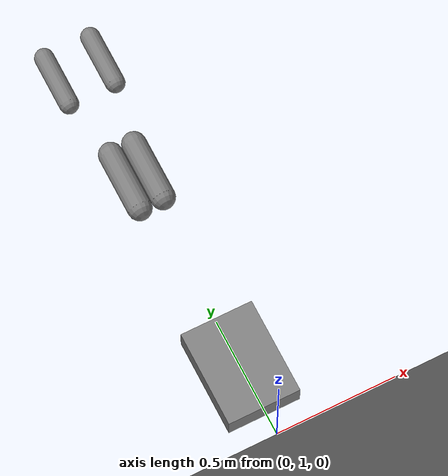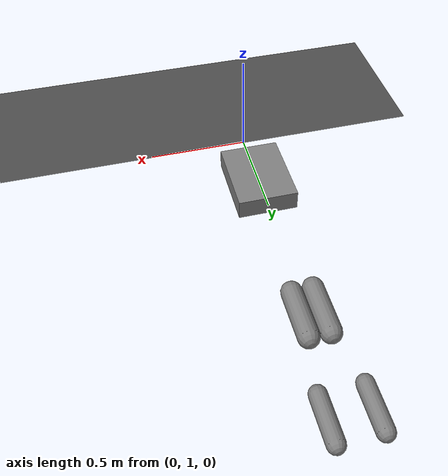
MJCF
<mujoco model="walker2d">
  <compiler angle="radian" />
  <option gravity="0 -9.81 0" />
  <default>
    <geom friction="0.8" />
    <joint damping="5.0" />
  </default>
  <custom>
    <numeric name="gravityScale" data="1" />
    <text name="forwardBody" data="torso" />
    <numeric name="groundY" data="0" />
    <numeric name="groundFriction" data="0.8" />
    <numeric name="groundRestitution" data="0.1" />
    <text name="defaultReward" data="{&quot;forwardVelWeight&quot;:1,&quot;aliveBonusWeight&quot;:1,&quot;ctrlCostWeight&quot;:0.001,&quot;terminationPenalty&quot;:0,&quot;healthyYMin&quot;:0.5,&quot;healthyAngleMax&quot;:0.8}" />
  </custom>
  <worldbody>
    <geom name="ground" type="plane" pos="0 0 0" size="50 1 1" friction="0.8 0.005 0.0001" rgba="0.3 0.3 0.3 1" />
    <body name="torso" pos="0 1.3 0">
      <geom name="torso" type="box" size="0.15 0.2 0.05" mass="3.53" friction="0.3" rl-forge:minY="0.5" rl-forge:maxAngle="0.8" />
      <body name="left_thigh" pos="0.05 0.875 0">
        <joint name="left_hip" type="hinge" axis="0 0 1" limited="true" range="-0.698 0.698" pos="0 0.175 0" damping="5" rl-forge:maxVelocity="10" rl-forge:anchorA="0.05 -0.2" />
        <geom name="left_thigh" type="capsule" size="0.05" fromto="0 -0.12499999999999999 0 0 0.12499999999999999 0" mass="0.898" friction="0.3" />
        <body name="left_shin" pos="0.05 0.5 0">
          <joint name="left_knee" type="hinge" axis="0 0 1" limited="true" range="-1.396 0" pos="0 0.15 0" damping="5" rl-forge:maxVelocity="10" rl-forge:anchorA="0 -0.175" />
          <geom name="left_shin" type="capsule" size="0.04" fromto="0 -0.10999999999999999 0 0 0.10999999999999999 0" mass="0.357" friction="0.8" rl-forge:isFootBody="true" />
        </body>
      </body>
      <body name="right_thigh" pos="-0.05 0.875 0">
        <joint name="right_hip" type="hinge" axis="0 0 1" limited="true" range="-0.698 0.698" pos="0 0.175 0" damping="5" rl-forge:maxVelocity="10" rl-forge:anchorA="-0.05 -0.2" />
        <geom name="right_thigh" type="capsule" size="0.05" fromto="0 -0.12499999999999999 0 0 0.12499999999999999 0" mass="0.898" friction="0.3" />
        <body name="right_shin" pos="-0.05 0.5 0">
          <joint name="right_knee" type="hinge" axis="0 0 1" limited="true" range="-1.396 0" pos="0 0.15 0" damping="5" rl-forge:maxVelocity="10" rl-forge:anchorA="0 -0.175" />
          <geom name="right_shin" type="capsule" size="0.04" fromto="0 -0.10999999999999999 0 0 0.10999999999999999 0" mass="0.357" friction="0.8" rl-forge:isFootBody="true" />
        </body>
      </body>
    </body>
  </worldbody>
  <actuator>
    <motor name="left_hip_motor" joint="left_hip" gear="250" ctrllimited="true" ctrlrange="-1 1" />
    <motor name="left_knee_motor" joint="left_knee" gear="250" ctrllimited="true" ctrlrange="-1 1" />
    <motor name="right_hip_motor" joint="right_hip" gear="250" ctrllimited="true" ctrlrange="-1 1" />
    <motor name="right_knee_motor" joint="right_knee" gear="250" ctrllimited="true" ctrlrange="-1 1" />
  </actuator>
</mujoco>
